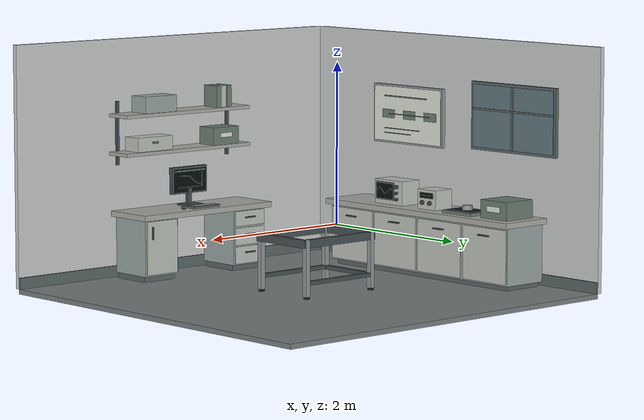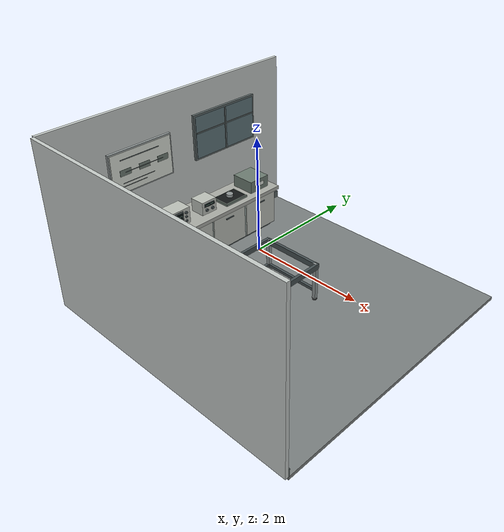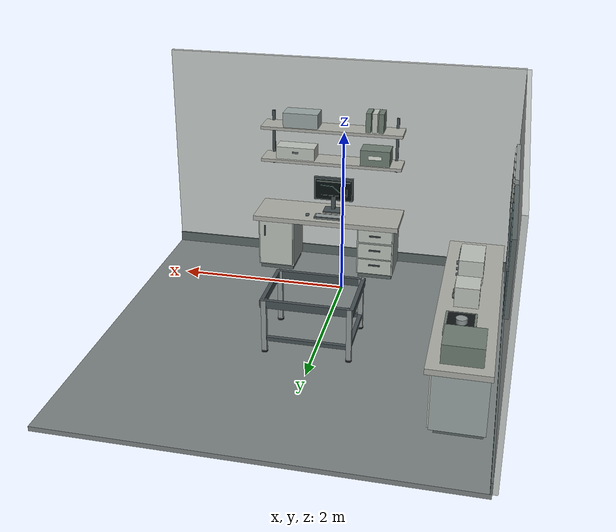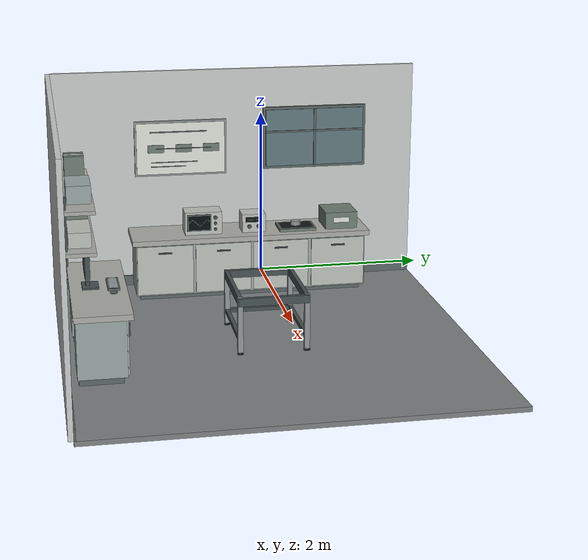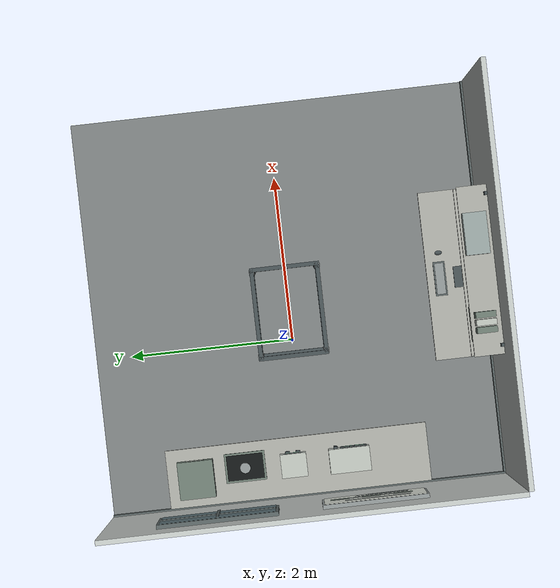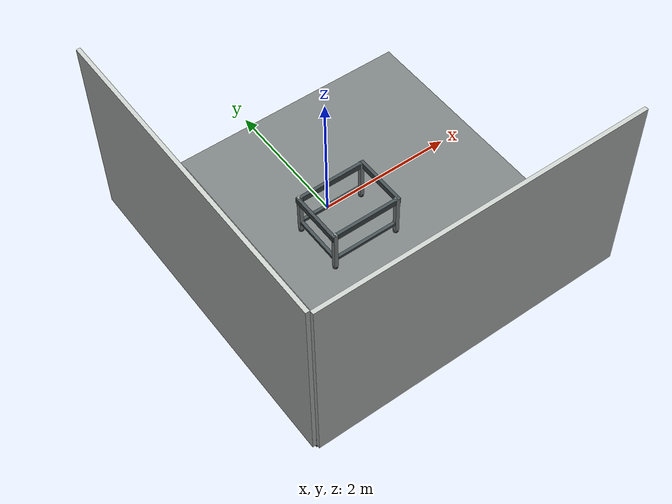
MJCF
<mujoco model="show_harness_lab">
  <asset>
    <texture name="lab_floor_tiles" type="2d" builtin="checker"
             rgb1="0.49 0.51 0.51" rgb2="0.46 0.48 0.48" width="512" height="512"/>
    <material name="lab_floor" texture="lab_floor_tiles" texrepeat="1 1"
              texuniform="true" reflectance="0.03" shininess="0.1"/>
    <material name="lab_tabletop" rgba="0.66 0.665 0.64 1" specular="0.12" shininess="0.15"/>
    <material name="lab_wall" rgba="0.77 0.79 0.78 1" specular="0.05"/>
    <material name="lab_trim" rgba="0.35 0.39 0.39 1" specular="0.2"/>
    <material name="lab_frame" rgba="0.27 0.31 0.32 1" specular="0.35" shininess="0.3"/>
    <material name="lab_metal" rgba="0.55 0.58 0.58 1" specular="0.4" shininess="0.3"/>
    <material name="lab_rubber" rgba="0.07 0.085 0.085 1" specular="0.02"/>
    <material name="lab_cabinet" rgba="0.59 0.64 0.63 1" specular="0.15"/>
    <material name="lab_instrument" rgba="0.73 0.75 0.72 1" specular="0.2"/>
    <material name="lab_screen" rgba="0.025 0.055 0.055 1" specular="0.35"/>
    <material name="lab_trace" rgba="0.36 0.68 0.51 1" emission="0.18"/>
    <material name="lab_board" rgba="0.86 0.88 0.84 1" specular="0.08"/>
    <material name="lab_glass" rgba="0.37 0.46 0.48 1" specular="0.4" shininess="0.5"/>
    <material name="lab_storage" rgba="0.42 0.48 0.44 1" specular="0.08"/>
  </asset>
  <worldbody>
    <!-- Broad room fill illuminates the walls without extra task-object shadows. -->
    <light name="lab_room_key" directional="true" pos="1 1 2" dir="-1 -1 -0.35"
           diffuse="0.35 0.35 0.35" ambient="0.15 0.15 0.15" castshadow="false"/>
    <light name="lab_room_fill" directional="true" pos="-1 -1 2" dir="0.8 0.8 -0.3"
           diffuse="0.15 0.15 0.15" ambient="0.08 0.08 0.08" castshadow="false"/>
    <!-- Four square steel legs, a recessed apron, lower cross rails, and levelling
         feet make the existing 1.3 x 1.0 m slab a freestanding robot worktable. -->
    <body name="lab_worktable">
      <geom name="lab_apron_front" type="box" pos="0.905 0 -0.11" size="0.025 0.435 0.05" material="lab_frame" contype="0" conaffinity="0" group="1" mass="0"/>
      <geom name="lab_apron_back" type="box" pos="-0.205 0 -0.11" size="0.025 0.435 0.05" material="lab_frame" contype="0" conaffinity="0" group="1" mass="0"/>
      <geom name="lab_apron_right" type="box" pos="0.35 0.41 -0.11" size="0.53 0.025 0.05" material="lab_frame" contype="0" conaffinity="0" group="1" mass="0"/>
      <geom name="lab_apron_left" type="box" pos="0.35 -0.41 -0.11" size="0.53 0.025 0.05" material="lab_frame" contype="0" conaffinity="0" group="1" mass="0"/>
      <geom name="lab_leg_front_right" type="box" pos="0.88 0.41 -0.405" size="0.032 0.032 0.345" material="lab_metal" contype="0" conaffinity="0" group="1" mass="0"/>
      <geom name="lab_leg_front_left" type="box" pos="0.88 -0.41 -0.405" size="0.032 0.032 0.345" material="lab_metal" contype="0" conaffinity="0" group="1" mass="0"/>
      <geom name="lab_leg_back_right" type="box" pos="-0.18 0.41 -0.405" size="0.032 0.032 0.345" material="lab_metal" contype="0" conaffinity="0" group="1" mass="0"/>
      <geom name="lab_leg_back_left" type="box" pos="-0.18 -0.41 -0.405" size="0.032 0.032 0.345" material="lab_metal" contype="0" conaffinity="0" group="1" mass="0"/>
      <geom name="lab_foot_front_right" type="cylinder" pos="0.88 0.41 -0.765" size="0.041 0.015" material="lab_rubber" contype="0" conaffinity="0" group="1" mass="0"/>
      <geom name="lab_foot_front_left" type="cylinder" pos="0.88 -0.41 -0.765" size="0.041 0.015" material="lab_rubber" contype="0" conaffinity="0" group="1" mass="0"/>
      <geom name="lab_foot_back_right" type="cylinder" pos="-0.18 0.41 -0.765" size="0.041 0.015" material="lab_rubber" contype="0" conaffinity="0" group="1" mass="0"/>
      <geom name="lab_foot_back_left" type="cylinder" pos="-0.18 -0.41 -0.765" size="0.041 0.015" material="lab_rubber" contype="0" conaffinity="0" group="1" mass="0"/>
      <geom name="lab_lower_rail_back" type="box" pos="-0.18 0 -0.59" size="0.025 0.39 0.025" material="lab_frame" contype="0" conaffinity="0" group="1" mass="0"/>
      <geom name="lab_lower_rail_left" type="box" pos="0.35 -0.41 -0.59" size="0.51 0.025 0.025" material="lab_frame" contype="0" conaffinity="0" group="1" mass="0"/>
      <geom name="lab_lower_rail_right" type="box" pos="0.35 0.41 -0.59" size="0.51 0.025 0.025" material="lab_frame" contype="0" conaffinity="0" group="1" mass="0"/>
    </body>

    <!-- An open-front room keeps all approved task cameras unobstructed. -->
    <body name="lab_room">
      <geom name="lab_floor_slab" type="box" pos="0.5 0 -0.81" size="2.5 2.5 0.03" material="lab_floor" contype="0" conaffinity="0" group="1" mass="0"/>
      <geom name="lab_back_wall" type="box" pos="-2.03 0 0.72" size="0.03 2.5 1.5" material="lab_wall" contype="0" conaffinity="0" group="1" mass="0"/>
      <geom name="lab_left_wall" type="box" pos="0.5 -2.53 0.72" size="2.5 0.03 1.5" material="lab_wall" contype="0" conaffinity="0" group="1" mass="0"/>
      <geom name="lab_back_skirt" type="box" pos="-1.99 0 -0.71" size="0.012 2.5 0.07" material="lab_trim" contype="0" conaffinity="0" group="1" mass="0"/>
      <geom name="lab_left_skirt" type="box" pos="0.5 -2.49 -0.71" size="2.5 0.012 0.07" material="lab_trim" contype="0" conaffinity="0" group="1" mass="0"/>
      <!-- Interior observation window and its mullions. -->
      <geom name="lab_window_frame" type="box" pos="-1.975 1.10 1.25" size="0.025 0.72 0.43" material="lab_trim" contype="0" conaffinity="0" group="1" mass="0"/>
      <geom name="lab_window_glazing" type="box" pos="-1.946 1.10 1.25" size="0.005 0.685 0.395" material="lab_glass" contype="0" conaffinity="0" group="1" mass="0"/>
      <geom name="lab_window_mullion" type="box" pos="-1.934 1.10 1.25" size="0.008 0.015 0.395" material="lab_trim" contype="0" conaffinity="0" group="1" mass="0"/>
      <geom name="lab_window_transom" type="box" pos="-1.934 1.10 1.34" size="0.008 0.685 0.012" material="lab_trim" contype="0" conaffinity="0" group="1" mass="0"/>
      <!-- Whiteboard with a restrained schematic, facing the front camera. -->
      <geom name="lab_board_frame" type="box" pos="-1.975 -0.77 1.16" size="0.025 0.63 0.38" material="lab_metal" contype="0" conaffinity="0" group="1" mass="0"/>
      <geom name="lab_board_surface" type="box" pos="-1.944 -0.77 1.16" size="0.005 0.605 0.355" material="lab_board" contype="0" conaffinity="0" group="1" mass="0"/>
      <geom name="lab_board_title" type="box" pos="-1.936 -0.80 1.39" size="0.002 0.39 0.008" material="lab_trim" contype="0" conaffinity="0" group="1" mass="0"/>
      <geom name="lab_board_diagram_a" type="box" pos="-1.935 -1.11 1.16" size="0.002 0.11 0.055" material="lab_storage" contype="0" conaffinity="0" group="1" mass="0"/>
      <geom name="lab_board_diagram_b" type="box" pos="-1.935 -0.73 1.16" size="0.002 0.11 0.055" material="lab_storage" contype="0" conaffinity="0" group="1" mass="0"/>
      <geom name="lab_board_diagram_c" type="box" pos="-1.935 -0.35 1.16" size="0.002 0.11 0.055" material="lab_storage" contype="0" conaffinity="0" group="1" mass="0"/>
      <geom name="lab_board_diagram_link" type="box" pos="-1.934 -0.73 1.16" size="0.003 0.38 0.005" material="lab_trim" contype="0" conaffinity="0" group="1" mass="0"/>
      <geom name="lab_board_note_a" type="box" pos="-1.936 -0.86 0.97" size="0.002 0.32 0.005" material="lab_trim" contype="0" conaffinity="0" group="1" mass="0"/>
      <geom name="lab_board_note_b" type="box" pos="-1.936 -0.94 0.91" size="0.002 0.24 0.005" material="lab_trim" contype="0" conaffinity="0" group="1" mass="0"/>
    </body>

    <!-- Electronics bench behind the robot. Cabinet and instrument faces point +X. -->
    <body name="lab_back_bench" pos="-1.56 0.10 0">
      <geom name="lab_back_worktop" type="box" pos="0 0 0.04" size="0.36 1.62 0.035" material="lab_tabletop" contype="0" conaffinity="0" group="1" mass="0"/>
      <geom name="lab_back_cabinet" type="box" pos="-0.025 0 -0.355" size="0.31 1.57 0.36" material="lab_cabinet" contype="0" conaffinity="0" group="1" mass="0"/>
      <geom name="lab_back_plinth" type="box" pos="-0.04 0 -0.745" size="0.27 1.52 0.035" material="lab_trim" contype="0" conaffinity="0" group="1" mass="0"/>
      <geom name="lab_back_door_1" type="box" pos="0.293 -1.18 -0.36" size="0.008 0.377 0.336" material="lab_instrument" contype="0" conaffinity="0" group="1" mass="0"/>
      <geom name="lab_back_door_2" type="box" pos="0.293 -0.39 -0.36" size="0.008 0.377 0.336" material="lab_instrument" contype="0" conaffinity="0" group="1" mass="0"/>
      <geom name="lab_back_door_3" type="box" pos="0.293 0.40 -0.36" size="0.008 0.377 0.336" material="lab_instrument" contype="0" conaffinity="0" group="1" mass="0"/>
      <geom name="lab_back_door_4" type="box" pos="0.293 1.19 -0.36" size="0.008 0.367 0.336" material="lab_instrument" contype="0" conaffinity="0" group="1" mass="0"/>
      <geom name="lab_back_handle_1" type="box" pos="0.314 -1.18 -0.12" size="0.012 0.09 0.008" material="lab_frame" contype="0" conaffinity="0" group="1" mass="0"/>
      <geom name="lab_back_handle_2" type="box" pos="0.314 -0.39 -0.12" size="0.012 0.09 0.008" material="lab_frame" contype="0" conaffinity="0" group="1" mass="0"/>
      <geom name="lab_back_handle_3" type="box" pos="0.314 0.40 -0.12" size="0.012 0.09 0.008" material="lab_frame" contype="0" conaffinity="0" group="1" mass="0"/>
      <geom name="lab_back_handle_4" type="box" pos="0.314 1.19 -0.12" size="0.012 0.09 0.008" material="lab_frame" contype="0" conaffinity="0" group="1" mass="0"/>
      <!-- Oscilloscope: dark screen, sampled trace, and a bank of control knobs. -->
      <body name="lab_scope" pos="0.02 -0.64 0.23">
        <geom name="lab_scope_case" type="box" size="0.15 0.25 0.155" material="lab_instrument" contype="0" conaffinity="0" group="1" mass="0"/>
        <geom name="lab_scope_bezel" type="box" pos="0.152 -0.06 0.015" size="0.006 0.163 0.113" material="lab_trim" contype="0" conaffinity="0" group="1" mass="0"/>
        <geom name="lab_scope_screen" type="box" pos="0.160 -0.06 0.015" size="0.003 0.148 0.098" material="lab_screen" contype="0" conaffinity="0" group="1" mass="0"/>
        <geom name="lab_scope_trace_1" type="capsule" fromto="0.165 -0.198 0.015 0.165 -0.15 0.06" size="0.002" material="lab_trace" contype="0" conaffinity="0" group="1" mass="0"/>
        <geom name="lab_scope_trace_2" type="capsule" fromto="0.165 -0.15 0.06 0.165 -0.10 0.015" size="0.002" material="lab_trace" contype="0" conaffinity="0" group="1" mass="0"/>
        <geom name="lab_scope_trace_3" type="capsule" fromto="0.165 -0.10 0.015 0.165 -0.05 -0.03" size="0.002" material="lab_trace" contype="0" conaffinity="0" group="1" mass="0"/>
        <geom name="lab_scope_trace_4" type="capsule" fromto="0.165 -0.05 -0.03 0.165 0 0.015" size="0.002" material="lab_trace" contype="0" conaffinity="0" group="1" mass="0"/>
        <geom name="lab_scope_trace_5" type="capsule" fromto="0.165 0 0.015 0.165 0.047 0.06" size="0.002" material="lab_trace" contype="0" conaffinity="0" group="1" mass="0"/>
        <geom name="lab_scope_trace_6" type="capsule" fromto="0.165 0.047 0.06 0.165 0.078 0.03" size="0.002" material="lab_trace" contype="0" conaffinity="0" group="1" mass="0"/>
        <geom name="lab_scope_knob_1" type="cylinder" pos="0.166 0.16 0.08" quat="0.70710678 0 0.70710678 0" size="0.025 0.014" material="lab_frame" contype="0" conaffinity="0" group="1" mass="0"/>
        <geom name="lab_scope_knob_2" type="cylinder" pos="0.166 0.16 0" quat="0.70710678 0 0.70710678 0" size="0.019 0.014" material="lab_frame" contype="0" conaffinity="0" group="1" mass="0"/>
        <geom name="lab_scope_knob_3" type="cylinder" pos="0.166 0.16 -0.08" quat="0.70710678 0 0.70710678 0" size="0.019 0.014" material="lab_frame" contype="0" conaffinity="0" group="1" mass="0"/>
      </body>
      <body name="lab_power_supply" pos="0.025 0.05 0.20">
        <geom name="lab_supply_case" type="box" size="0.145 0.16 0.125" material="lab_instrument" contype="0" conaffinity="0" group="1" mass="0"/>
        <geom name="lab_supply_display" type="box" pos="0.149 0 0.055" size="0.004 0.115 0.035" material="lab_screen" contype="0" conaffinity="0" group="1" mass="0"/>
        <geom name="lab_supply_readout_1" type="box" pos="0.155 -0.045 0.055" size="0.002 0.038 0.003" material="lab_trace" contype="0" conaffinity="0" group="1" mass="0"/>
        <geom name="lab_supply_readout_2" type="box" pos="0.155 0.052 0.055" size="0.002 0.028 0.003" material="lab_trace" contype="0" conaffinity="0" group="1" mass="0"/>
        <geom name="lab_supply_knob_1" type="cylinder" pos="0.158 -0.065 -0.04" quat="0.70710678 0 0.70710678 0" size="0.027 0.014" material="lab_frame" contype="0" conaffinity="0" group="1" mass="0"/>
        <geom name="lab_supply_knob_2" type="cylinder" pos="0.158 0.065 -0.04" quat="0.70710678 0 0.70710678 0" size="0.027 0.014" material="lab_frame" contype="0" conaffinity="0" group="1" mass="0"/>
      </body>
      <geom name="lab_tool_tray" type="box" pos="0.06 0.65 0.095" size="0.18 0.25 0.02" material="lab_storage" contype="0" conaffinity="0" group="1" mass="0"/>
      <geom name="lab_tray_insert" type="box" pos="0.06 0.65 0.117" size="0.155 0.225 0.005" material="lab_rubber" contype="0" conaffinity="0" group="1" mass="0"/>
      <geom name="lab_sample_fixture" type="cylinder" pos="0.05 0.65 0.151" size="0.065 0.028" material="lab_metal" contype="0" conaffinity="0" group="1" mass="0"/>
      <geom name="lab_storage_bin" type="box" pos="-0.02 1.26 0.19" size="0.23 0.22 0.115" material="lab_storage" contype="0" conaffinity="0" group="1" mass="0"/>
      <geom name="lab_storage_label" type="box" pos="0.212 1.26 0.20" size="0.002 0.11 0.035" material="lab_board" contype="0" conaffinity="0" group="1" mass="0"/>
    </body>

    <!-- Side workstation with a monitor, keyboard and wall-mounted shelving. -->
    <body name="lab_side_bench" pos="0.58 -2.08 0">
      <geom name="lab_side_worktop" type="box" pos="0 0 0.04" size="1.04 0.34 0.035" material="lab_tabletop" contype="0" conaffinity="0" group="1" mass="0"/>
      <geom name="lab_side_cabinet_left" type="box" pos="-0.72 -0.025 -0.35" size="0.26 0.29 0.355" material="lab_cabinet" contype="0" conaffinity="0" group="1" mass="0"/>
      <geom name="lab_side_cabinet_right" type="box" pos="0.72 -0.025 -0.35" size="0.26 0.29 0.355" material="lab_cabinet" contype="0" conaffinity="0" group="1" mass="0"/>
      <geom name="lab_side_plinth_left" type="box" pos="-0.72 -0.04 -0.744" size="0.24 0.26 0.036" material="lab_trim" contype="0" conaffinity="0" group="1" mass="0"/>
      <geom name="lab_side_plinth_right" type="box" pos="0.72 -0.04 -0.744" size="0.24 0.26 0.036" material="lab_trim" contype="0" conaffinity="0" group="1" mass="0"/>
      <geom name="lab_side_drawer_1" type="box" pos="-0.72 0.275 -0.11" size="0.24 0.008 0.095" material="lab_instrument" contype="0" conaffinity="0" group="1" mass="0"/>
      <geom name="lab_side_drawer_2" type="box" pos="-0.72 0.275 -0.34" size="0.24 0.008 0.11" material="lab_instrument" contype="0" conaffinity="0" group="1" mass="0"/>
      <geom name="lab_side_drawer_3" type="box" pos="-0.72 0.275 -0.58" size="0.24 0.008 0.11" material="lab_instrument" contype="0" conaffinity="0" group="1" mass="0"/>
      <geom name="lab_side_drawer_handle_1" type="box" pos="-0.72 0.295 -0.10" size="0.08 0.012 0.008" material="lab_frame" contype="0" conaffinity="0" group="1" mass="0"/>
      <geom name="lab_side_drawer_handle_2" type="box" pos="-0.72 0.295 -0.32" size="0.08 0.012 0.008" material="lab_frame" contype="0" conaffinity="0" group="1" mass="0"/>
      <geom name="lab_side_drawer_handle_3" type="box" pos="-0.72 0.295 -0.55" size="0.08 0.012 0.008" material="lab_frame" contype="0" conaffinity="0" group="1" mass="0"/>
      <geom name="lab_side_door" type="box" pos="0.72 0.275 -0.35" size="0.24 0.008 0.335" material="lab_instrument" contype="0" conaffinity="0" group="1" mass="0"/>
      <geom name="lab_side_door_handle" type="box" pos="0.88 0.295 -0.16" size="0.008 0.012 0.08" material="lab_frame" contype="0" conaffinity="0" group="1" mass="0"/>
      <geom name="lab_monitor_base" type="box" pos="-0.04 -0.09 0.086" size="0.13 0.10 0.011" material="lab_frame" contype="0" conaffinity="0" group="1" mass="0"/>
      <geom name="lab_monitor_stem" type="box" pos="-0.04 -0.12 0.195" size="0.027 0.026 0.10" material="lab_frame" contype="0" conaffinity="0" group="1" mass="0"/>
      <geom name="lab_monitor_case" type="box" pos="-0.04 -0.13 0.40" size="0.285 0.026 0.17" material="lab_frame" contype="0" conaffinity="0" group="1" mass="0"/>
      <geom name="lab_monitor_screen" type="box" pos="-0.04 -0.10 0.40" size="0.264 0.003 0.149" material="lab_screen" contype="0" conaffinity="0" group="1" mass="0"/>
      <geom name="lab_monitor_toolbar" type="box" pos="-0.04 -0.095 0.52" size="0.244 0.002 0.008" material="lab_storage" contype="0" conaffinity="0" group="1" mass="0"/>
      <geom name="lab_monitor_plot_x" type="box" pos="-0.05 -0.095 0.31" size="0.19 0.002 0.002" material="lab_metal" contype="0" conaffinity="0" group="1" mass="0"/>
      <geom name="lab_monitor_plot_y" type="box" pos="-0.24 -0.095 0.40" size="0.002 0.002 0.09" material="lab_metal" contype="0" conaffinity="0" group="1" mass="0"/>
      <geom name="lab_monitor_curve_1" type="capsule" fromto="-0.23 -0.091 0.33 -0.12 -0.091 0.37" size="0.003" material="lab_trace" contype="0" conaffinity="0" group="1" mass="0"/>
      <geom name="lab_monitor_curve_2" type="capsule" fromto="-0.12 -0.091 0.37 -0.03 -0.091 0.45" size="0.003" material="lab_trace" contype="0" conaffinity="0" group="1" mass="0"/>
      <geom name="lab_monitor_curve_3" type="capsule" fromto="-0.03 -0.091 0.45 0.14 -0.091 0.46" size="0.003" material="lab_trace" contype="0" conaffinity="0" group="1" mass="0"/>
      <geom name="lab_keyboard" type="box" pos="-0.04 0.18 0.089" size="0.21 0.072 0.014" material="lab_trim" contype="0" conaffinity="0" group="1" mass="0"/>
      <geom name="lab_keyboard_keys" type="box" pos="-0.04 0.18 0.105" size="0.192 0.055 0.002" material="lab_metal" contype="0" conaffinity="0" group="1" mass="0"/>
      <geom name="lab_mouse" type="ellipsoid" pos="0.28 0.17 0.092" size="0.028 0.045 0.018" material="lab_frame" contype="0" conaffinity="0" group="1" mass="0"/>
      <geom name="lab_shelf_lower" type="box" pos="0 -0.225 0.79" size="1.01 0.18 0.022" material="lab_tabletop" contype="0" conaffinity="0" group="1" mass="0"/>
      <geom name="lab_shelf_upper" type="box" pos="0 -0.225 1.27" size="1.01 0.18 0.022" material="lab_tabletop" contype="0" conaffinity="0" group="1" mass="0"/>
      <geom name="lab_shelf_upright_left" type="box" pos="-0.90 -0.38 1.04" size="0.019 0.017 0.40" material="lab_frame" contype="0" conaffinity="0" group="1" mass="0"/>
      <geom name="lab_shelf_upright_right" type="box" pos="0.90 -0.38 1.04" size="0.019 0.017 0.40" material="lab_frame" contype="0" conaffinity="0" group="1" mass="0"/>
      <geom name="lab_shelf_bin_left" type="box" pos="-0.63 -0.21 0.924" size="0.21 0.14 0.112" material="lab_storage" contype="0" conaffinity="0" group="1" mass="0"/>
      <geom name="lab_shelf_bin_label" type="box" pos="-0.63 -0.068 0.934" size="0.095 0.002 0.028" material="lab_board" contype="0" conaffinity="0" group="1" mass="0"/>
      <geom name="lab_shelf_case_right" type="box" pos="0.52 -0.22 0.901" size="0.28 0.13 0.089" material="lab_instrument" contype="0" conaffinity="0" group="1" mass="0"/>
      <geom name="lab_shelf_case_latch" type="box" pos="0.52 -0.088 0.917" size="0.045 0.004 0.013" material="lab_trim" contype="0" conaffinity="0" group="1" mass="0"/>
      <geom name="lab_shelf_binder_1" type="box" pos="-0.70 -0.21 1.43" size="0.036 0.12 0.138" material="lab_storage" contype="0" conaffinity="0" group="1" mass="0"/>
      <geom name="lab_shelf_binder_2" type="box" pos="-0.61 -0.21 1.43" size="0.036 0.12 0.138" material="lab_instrument" contype="0" conaffinity="0" group="1" mass="0"/>
      <geom name="lab_shelf_binder_3" type="box" pos="-0.52 -0.21 1.43" size="0.036 0.12 0.138" material="lab_storage" contype="0" conaffinity="0" group="1" mass="0"/>
      <geom name="lab_shelf_box_upper" type="box" pos="0.44 -0.21 1.397" size="0.25 0.14 0.105" material="lab_cabinet" contype="0" conaffinity="0" group="1" mass="0"/>
    </body>

    <!-- Recording/presentation only. Moved 1.6 m along the original sightline
         toward the workspace, retaining the viewing angle and field of view. -->
    <camera name="lab_overview" pos="1.458941090 1.269582380 0.917281879"
            xyaxes="-0.738 0.674 0 -0.330 -0.361 0.872" fovy="58"/>
  </worldbody>
</mujoco>
